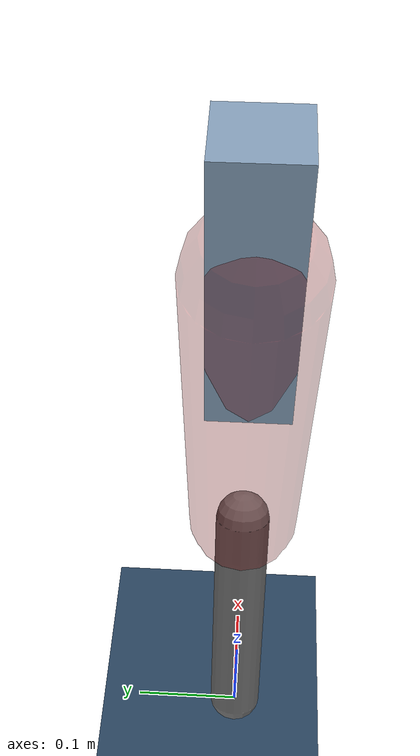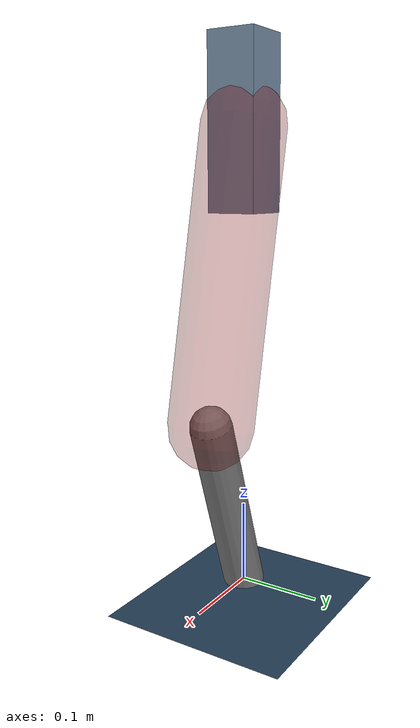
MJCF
<mujoco model="Hopper2D">
	<compiler inertiafromgeom="true" angle="radian" />
	<option timestep="0.001" integrator="implicit" cone="elliptic" solver="Newton" tolerance="1e-10" />

	<default>
		<geom contype="1" conaffinity="1" condim="3" friction="2 0.005 0.0001" solref="0.005 1" />
		<joint limited="true" damping="0.1" />
	</default>

	<asset>
		<texture name="skybox" type="skybox" builtin="gradient" rgb1=".4 .6 .8" rgb2="0 0 0" width="800" height="800" />
		<texture name="grid" type="2d" builtin="checker" rgb1=".1 .2 .3" rgb2=".2 .3 .4" width="300" height="300" mark="edge" markrgb=".2 .3 .4" />
		<material name="ground" texture="grid" texrepeat="1 1" texuniform="true" reflectance="0.1" />
		<material name="leg" rgba="0.5 0.6 0.7 1" />
	</asset>

	<worldbody>

		<geom name="floor" type="plane" size="5 5 0.25" material="ground" />

		<light directional="false" diffuse="0.8 0.8 0.8" specular="0.3 0.3 0.3" pos="0 0 2" dir="0 0 -1" />
		<light mode="targetbodycom" target="base" directional="false" diffuse="0.8 0.8 0.8" specular="0.3 0.3 0.3" pos="0 0 2" dir="0 0 -1" />

		<camera name="fixed" pos="0 -2 1" xyaxes="1 0 0 0 0 1" />
		<camera name="tracking" mode="trackcom" pos="0 -3 1" />

		<body name="root" pos="0 0 0.5597662267707254">
			<joint name="slide_x" type="slide" axis="1 0 0" range="-100 100" />
			<joint name="slide_z" type="slide" axis="0 0 1" range="0 10" />

			<body name="base" pos="0 0 0">
				<geom name="torso" type="box" size="0.03 0.03 0.1" mass="2.846" material="leg" />

				<body name="link1" pos="0 0 0" euler="0 1.360640721704816 0">
					<joint type="hinge" axis="0 -1 0" pos="0 0 0" name="hinge1" limited="true" range="-3.14 3.14" stiffness="0" damping="0.1" />
					<geom name="thigh" type="capsule" fromto="0 0 0 0.34795384094264775 0 0" size="0.05" rgba="0.5 0 0 0.3" mass="1.1209707546394139" />

					<body name="link2" pos="0.34795384094264775 0 0" euler="0 0.5295726514366546 0">
						<joint type="hinge" axis="0 -1 0" pos="0 0 0" name="hinge2" limited="true" range="-3.14 3.14" stiffness="0" damping="0.1" />
						<geom name="shank" type="capsule" fromto="0 0 0 0.23116030831991569 0 0" size="0.025" mass="0.42692824665593254" />

					</body>
				</body>
			</body>
		</body>
	</worldbody>

	<actuator>
		<motor name="torque1" joint="hinge1" ctrlrange="-102.91908100765514 102.91908100765514" ctrllimited="true" gear="1" />
		<motor name="torque2" joint="hinge2" ctrlrange="-127.91501159655728 127.91501159655728" ctrllimited="true" gear="1" />
	</actuator>
</mujoco>
